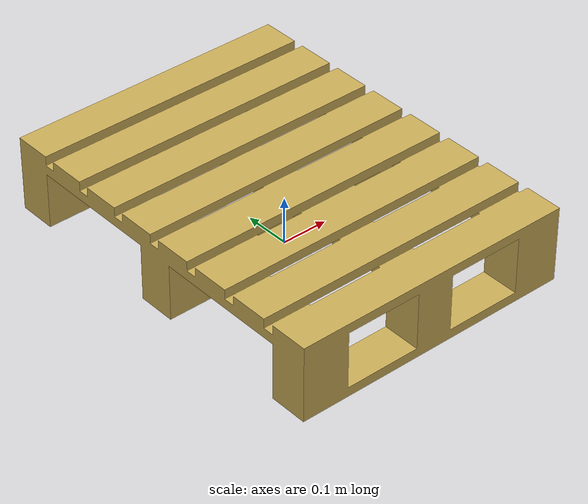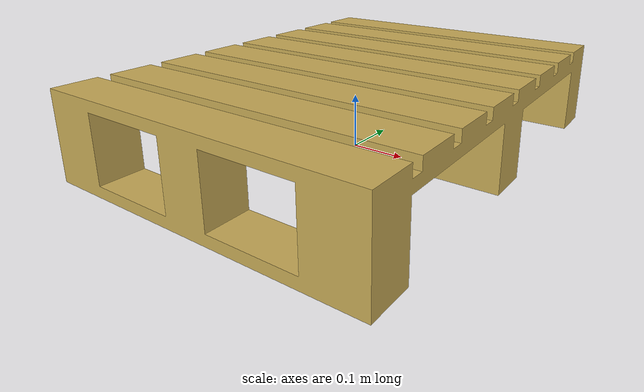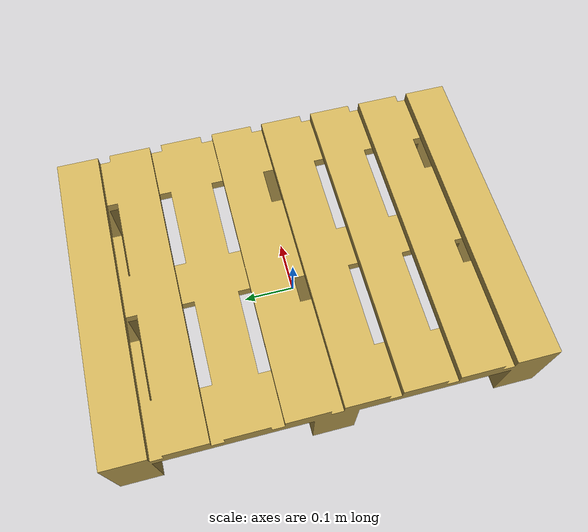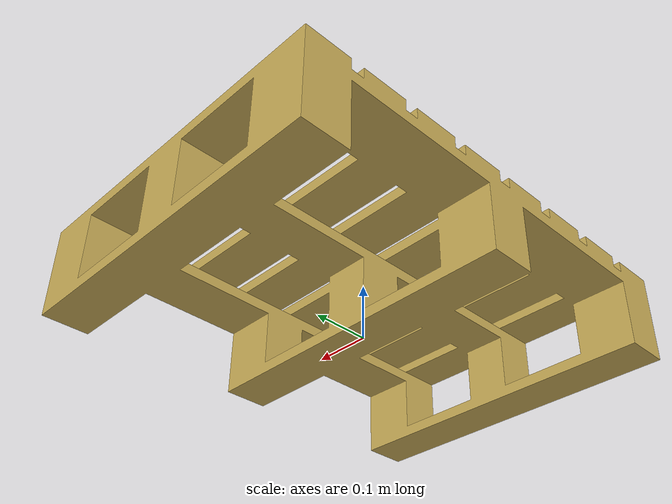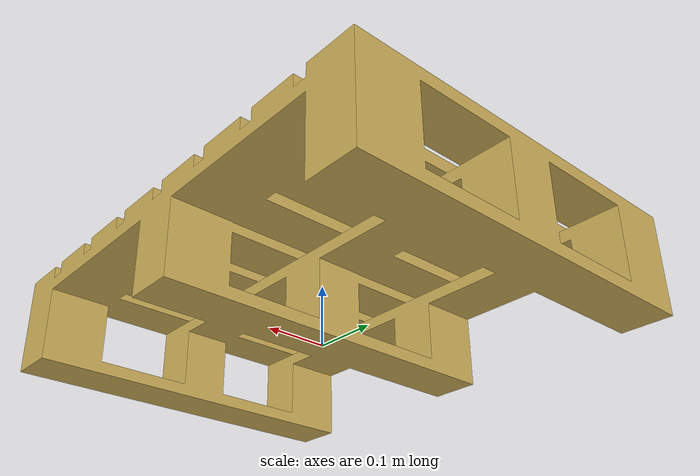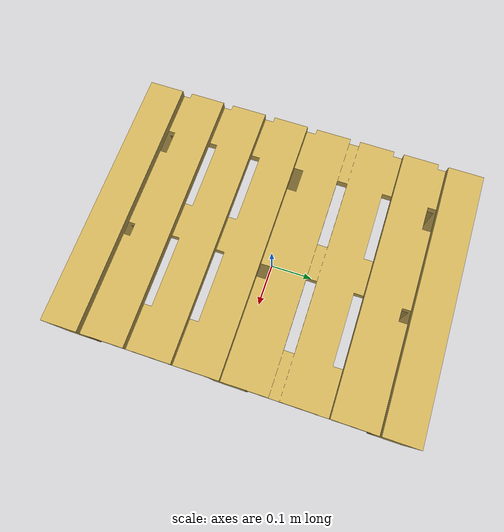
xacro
<?xml version="1.0"?>

<robot name="euro_half_pallet" xmlns:xacro="http://ros.org/wiki/xacro">

  <link name="base_link">
    <inertial>
      <mass value="2"/>
      <inertia ixx="1" ixy="0" ixz="0" iyy="1" iyz="0" izz="1" />
      <origin/>
    </inertial>

    <visual>
      <origin rpy="0 0 0" xyz="0 0 0"/>
      <geometry>
	<mesh filename="package://euro_pallet/meshes/EUR6_Half_Pallet.dae" scale = "1 1 1"/>
      </geometry>
    </visual>

    <collision>
      <origin rpy="0 0 0" xyz="0 0 0"/>
      <geometry>
	<!-- package://euro_pallet/meshes/euro_pallet.dae -->
	<mesh filename="package://euro_pallet/meshes/EUR6_Half_Pallet.dae" scale = "1 1 1"/>
      </geometry>
      <contact_coefficients mu="1" kp="10.0" kd="10.0"/> -->
    </collision>
  </link>
</robot>
